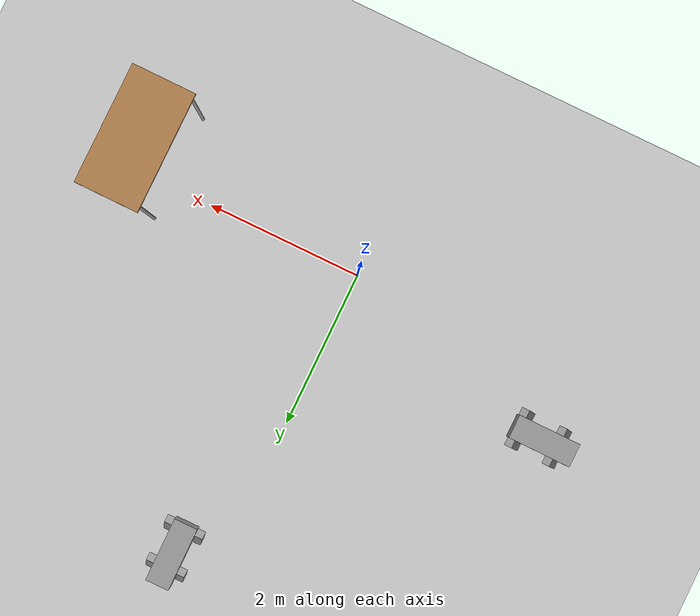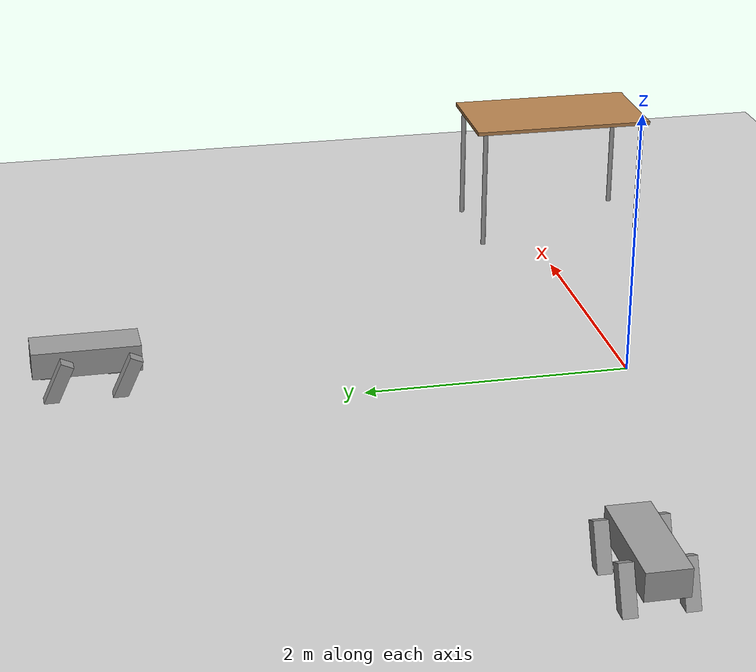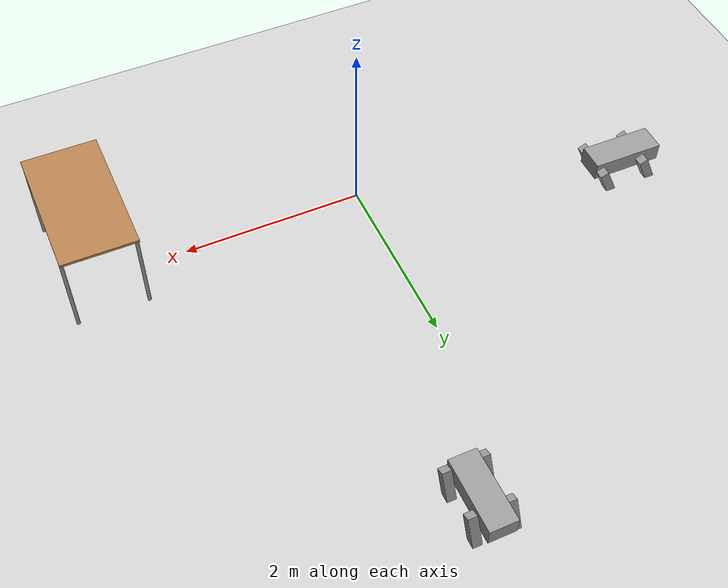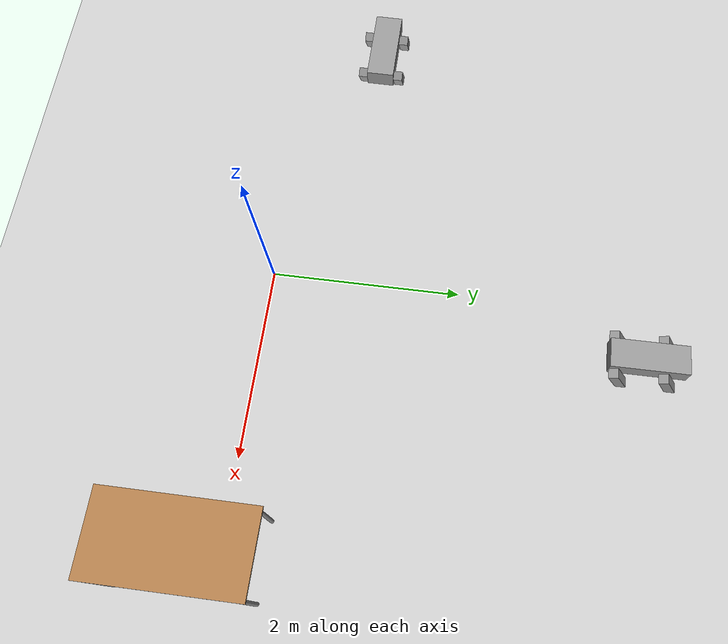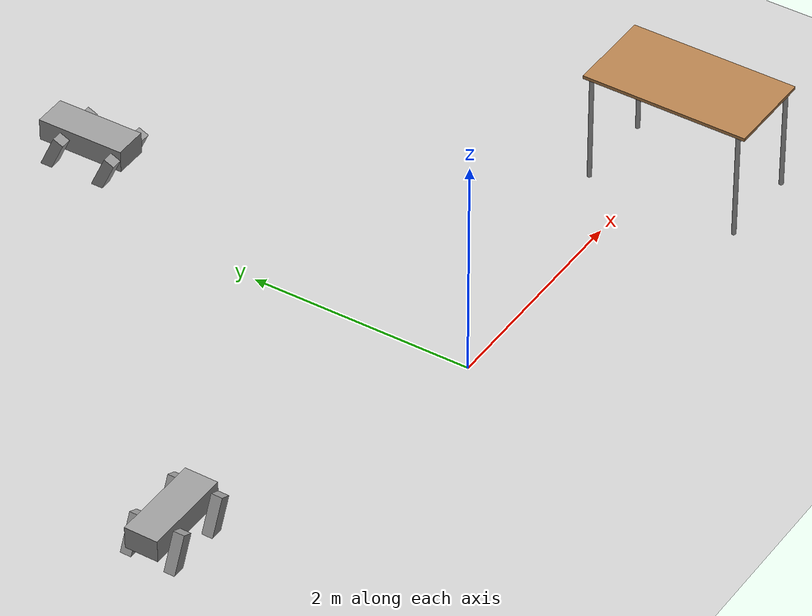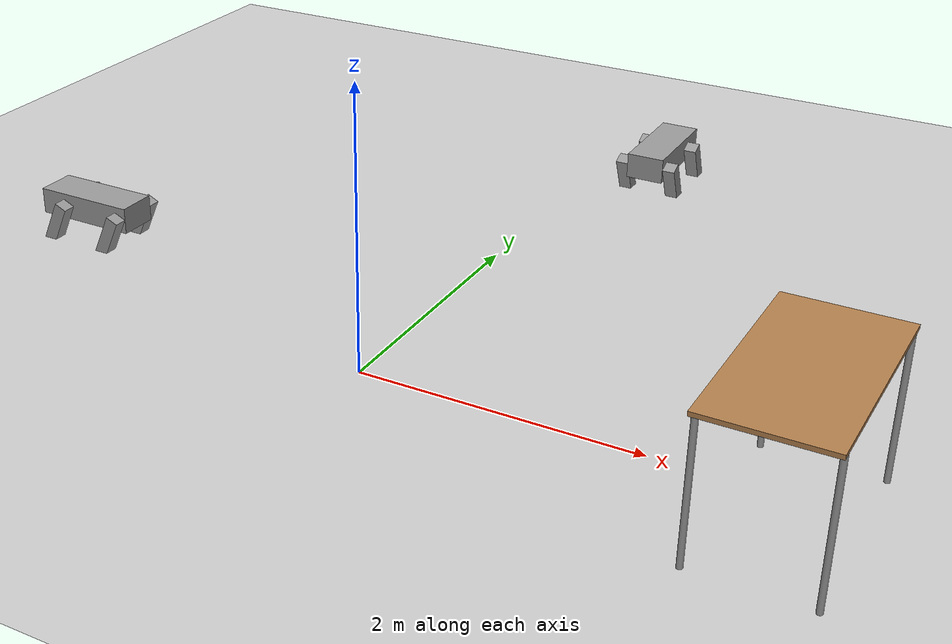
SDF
<sdf version="1.6">
 <world name="default">
  <model name="ground_plane">
   <static>1</static>
   <link name="link">
    <collision name="collision">
     <geometry><plane><normal>0 0 1</normal><size>100 100</size></plane></geometry>
     <surface>
      <contact><collide_bitmask>65535</collide_bitmask></contact>
      <friction><ode><mu>100</mu><mu2>50</mu2></ode></friction>
     </surface>
    </collision>
    <visual name="visual">
     <cast_shadows>0</cast_shadows>
     <geometry><plane><normal>0 0 1</normal><size>100 100</size></plane></geometry>
     <material>
      <script><uri>file://media/materials/scripts/gazebo.material</uri><name>Gazebo/Grey</name></script>
     </material>
    </visual>
   </link>
  </model>
  <model name="Dog">
   <link name="link_3">
    <pose>0 0 0.155724 0 -0 0</pose>
    <inertial>
     <mass>1</mass>
     <inertia>
      <ixx>0.166667</ixx>
      <ixy>0</ixy>
      <ixz>0</ixz>
      <iyy>0.166667</iyy>
      <iyz>0</iyz>
      <izz>0.166667</izz>
     </inertia>
    </inertial>
    <visual name="visual">
     <geometry><box><size>0.3 0.8 0.2</size></box></geometry>
     <material>
      <lighting>1</lighting>
      <script><uri>file://media/materials/scripts/gazebo.material</uri><name>Gazebo/Grey</name></script>
      <shader type="pixel"><normal_map>__default__</normal_map></shader>
      <ambient>0.3 0.3 0.3 1</ambient>
      <diffuse>0.7 0.7 0.7 1</diffuse>
      <specular>0.01 0.01 0.01 1</specular>
      <emissive>0 0 0 1</emissive>
     </material>
    </visual>
    <collision name="collision">
     <geometry><box><size>0.3 0.8 0.2</size></box></geometry>
     <surface>
      <friction>
       <ode><mu>1</mu><mu2>1</mu2><fdir1>0 0 0</fdir1><slip1>0</slip1><slip2>0</slip2></ode>
       <torsional>
        <coefficient>1</coefficient>
        <patch_radius>0</patch_radius>
        <surface_radius>0</surface_radius>
        <use_patch_radius>1</use_patch_radius>
        <ode><slip>0</slip></ode>
       </torsional>
      </friction>
      <bounce><restitution_coefficient>0</restitution_coefficient><threshold>1e+06</threshold></bounce>
      <contact>
       <collide_without_contact>0</collide_without_contact>
       <collide_without_contact_bitmask>1</collide_without_contact_bitmask>
       <collide_bitmask>1</collide_bitmask>
       <ode>
        <soft_cfm>0</soft_cfm>
        <soft_erp>0.2</soft_erp>
        <kp>1e+13</kp>
        <kd>1</kd>
        <max_vel>0.01</max_vel>
        <min_depth>0</min_depth>
       </ode>
       <bullet>
        <split_impulse>1</split_impulse>
        <split_impulse_penetration_threshold>-0.01</split_impulse_penetration_threshold>
        <soft_cfm>0</soft_cfm>
        <soft_erp>0.2</soft_erp>
        <kp>1e+13</kp>
        <kd>1</kd>
       </bullet>
      </contact>
     </surface>
    </collision>
   </link>
   <link name="link_4_clone">
    <pose>-0.2 0.250498 -0.038931 2 -0 0</pose>
    <inertial>
     <mass>1</mass>
     <inertia>
      <ixx>0.166667</ixx>
      <ixy>0</ixy>
      <ixz>0</ixz>
      <iyy>0.166667</iyy>
      <iyz>0</iyz>
      <izz>0.166667</izz>
     </inertia>
    </inertial>
    <visual name="visual">
     <geometry><box><size>0.1 0.5 0.1</size></box></geometry>
     <material>
      <lighting>1</lighting>
      <script><uri>file://media/materials/scripts/gazebo.material</uri><name>Gazebo/Grey</name></script>
      <shader type="pixel"><normal_map>__default__</normal_map></shader>
      <ambient>0.3 0.3 0.3 1</ambient>
      <diffuse>0.7 0.7 0.7 1</diffuse>
      <specular>0.01 0.01 0.01 1</specular>
      <emissive>0 0 0 1</emissive>
     </material>
    </visual>
    <collision name="collision">
     <geometry><box><size>0.1 0.5 0.1</size></box></geometry>
     <surface>
      <friction>
       <ode><mu>1</mu><mu2>1</mu2><fdir1>0 0 0</fdir1><slip1>0</slip1><slip2>0</slip2></ode>
       <torsional>
        <coefficient>1</coefficient>
        <patch_radius>0</patch_radius>
        <surface_radius>0</surface_radius>
        <use_patch_radius>1</use_patch_radius>
        <ode><slip>0</slip></ode>
       </torsional>
      </friction>
      <bounce><restitution_coefficient>0</restitution_coefficient><threshold>1e+06</threshold></bounce>
      <contact>
       <collide_without_contact>0</collide_without_contact>
       <collide_without_contact_bitmask>1</collide_without_contact_bitmask>
       <collide_bitmask>1</collide_bitmask>
       <ode>
        <soft_cfm>0</soft_cfm>
        <soft_erp>0.2</soft_erp>
        <kp>1e+13</kp>
        <kd>1</kd>
        <max_vel>0.01</max_vel>
        <min_depth>0</min_depth>
       </ode>
       <bullet>
        <split_impulse>1</split_impulse>
        <split_impulse_penetration_threshold>-0.01</split_impulse_penetration_threshold>
        <soft_cfm>0</soft_cfm>
        <soft_erp>0.2</soft_erp>
        <kp>1e+13</kp>
        <kd>1</kd>
       </bullet>
      </contact>
     </surface>
    </collision>
   </link>
   <link name="link_4_clone_0">
    <pose>0.2 -0.250498 -0.038931 2 -0 0</pose>
    <inertial>
     <mass>1</mass>
     <inertia>
      <ixx>0.166667</ixx>
      <ixy>0</ixy>
      <ixz>0</ixz>
      <iyy>0.166667</iyy>
      <iyz>0</iyz>
      <izz>0.166667</izz>
     </inertia>
    </inertial>
    <visual name="visual">
     <geometry><box><size>0.1 0.5 0.1</size></box></geometry>
     <material>
      <lighting>1</lighting>
      <script><uri>file://media/materials/scripts/gazebo.material</uri><name>Gazebo/Grey</name></script>
      <shader type="pixel"><normal_map>__default__</normal_map></shader>
      <ambient>0.3 0.3 0.3 1</ambient>
      <diffuse>0.7 0.7 0.7 1</diffuse>
      <specular>0.01 0.01 0.01 1</specular>
      <emissive>0 0 0 1</emissive>
     </material>
    </visual>
    <collision name="collision">
     <geometry><box><size>0.1 0.5 0.1</size></box></geometry>
     <surface>
      <friction>
       <ode><mu>1</mu><mu2>1</mu2><fdir1>0 0 0</fdir1><slip1>0</slip1><slip2>0</slip2></ode>
       <torsional>
        <coefficient>1</coefficient>
        <patch_radius>0</patch_radius>
        <surface_radius>0</surface_radius>
        <use_patch_radius>1</use_patch_radius>
        <ode><slip>0</slip></ode>
       </torsional>
      </friction>
      <bounce><restitution_coefficient>0</restitution_coefficient><threshold>1e+06</threshold></bounce>
      <contact>
       <collide_without_contact>0</collide_without_contact>
       <collide_without_contact_bitmask>1</collide_without_contact_bitmask>
       <collide_bitmask>1</collide_bitmask>
       <ode>
        <soft_cfm>0</soft_cfm>
        <soft_erp>0.2</soft_erp>
        <kp>1e+13</kp>
        <kd>1</kd>
        <max_vel>0.01</max_vel>
        <min_depth>0</min_depth>
       </ode>
       <bullet>
        <split_impulse>1</split_impulse>
        <split_impulse_penetration_threshold>-0.01</split_impulse_penetration_threshold>
        <soft_cfm>0</soft_cfm>
        <soft_erp>0.2</soft_erp>
        <kp>1e+13</kp>
        <kd>1</kd>
       </bullet>
      </contact>
     </surface>
    </collision>
   </link>
   <link name="link_4_clone_1">
    <pose>-0.2 -0.250498 -0.038931 2 -0 0</pose>
    <inertial>
     <mass>1</mass>
     <inertia>
      <ixx>0.166667</ixx>
      <ixy>0</ixy>
      <ixz>0</ixz>
      <iyy>0.166667</iyy>
      <iyz>0</iyz>
      <izz>0.166667</izz>
     </inertia>
    </inertial>
    <visual name="visual">
     <geometry><box><size>0.1 0.5 0.1</size></box></geometry>
     <material>
      <lighting>1</lighting>
      <script><uri>file://media/materials/scripts/gazebo.material</uri><name>Gazebo/Grey</name></script>
      <shader type="pixel"><normal_map>__default__</normal_map></shader>
      <ambient>0.3 0.3 0.3 1</ambient>
      <diffuse>0.7 0.7 0.7 1</diffuse>
      <specular>0.01 0.01 0.01 1</specular>
      <emissive>0 0 0 1</emissive>
     </material>
    </visual>
    <collision name="collision">
     <geometry><box><size>0.1 0.5 0.1</size></box></geometry>
     <surface>
      <friction>
       <ode><mu>1</mu><mu2>1</mu2><fdir1>0 0 0</fdir1><slip1>0</slip1><slip2>0</slip2></ode>
       <torsional>
        <coefficient>1</coefficient>
        <patch_radius>0</patch_radius>
        <surface_radius>0</surface_radius>
        <use_patch_radius>1</use_patch_radius>
        <ode><slip>0</slip></ode>
       </torsional>
      </friction>
      <bounce><restitution_coefficient>0</restitution_coefficient><threshold>1e+06</threshold></bounce>
      <contact>
       <collide_without_contact>0</collide_without_contact>
       <collide_without_contact_bitmask>1</collide_without_contact_bitmask>
       <collide_bitmask>1</collide_bitmask>
       <ode>
        <soft_cfm>0</soft_cfm>
        <soft_erp>0.2</soft_erp>
        <kp>1e+13</kp>
        <kd>1</kd>
        <max_vel>0.01</max_vel>
        <min_depth>0</min_depth>
       </ode>
       <bullet>
        <split_impulse>1</split_impulse>
        <split_impulse_penetration_threshold>-0.01</split_impulse_penetration_threshold>
        <soft_cfm>0</soft_cfm>
        <soft_erp>0.2</soft_erp>
        <kp>1e+13</kp>
        <kd>1</kd>
       </bullet>
      </contact>
     </surface>
    </collision>
   </link>
   <link name="link_4_clone_1_clone">
    <pose>0.2 0.250498 -0.038931 2 -0 0</pose>
    <inertial>
     <mass>1</mass>
     <inertia>
      <ixx>0.166667</ixx>
      <ixy>0</ixy>
      <ixz>0</ixz>
      <iyy>0.166667</iyy>
      <iyz>0</iyz>
      <izz>0.166667</izz>
     </inertia>
    </inertial>
    <visual name="visual">
     <geometry><box><size>0.1 0.5 0.1</size></box></geometry>
     <material>
      <lighting>1</lighting>
      <script><uri>file://media/materials/scripts/gazebo.material</uri><name>Gazebo/Grey</name></script>
      <shader type="pixel"><normal_map>__default__</normal_map></shader>
      <ambient>0.3 0.3 0.3 1</ambient>
      <diffuse>0.7 0.7 0.7 1</diffuse>
      <specular>0.01 0.01 0.01 1</specular>
      <emissive>0 0 0 1</emissive>
     </material>
    </visual>
    <collision name="collision">
     <geometry><box><size>0.1 0.5 0.1</size></box></geometry>
     <surface>
      <friction>
       <ode><mu>1</mu><mu2>1</mu2><fdir1>0 0 0</fdir1><slip1>0</slip1><slip2>0</slip2></ode>
       <torsional>
        <coefficient>1</coefficient>
        <patch_radius>0</patch_radius>
        <surface_radius>0</surface_radius>
        <use_patch_radius>1</use_patch_radius>
        <ode><slip>0</slip></ode>
       </torsional>
      </friction>
      <bounce><restitution_coefficient>0</restitution_coefficient><threshold>1e+06</threshold></bounce>
      <contact>
       <collide_without_contact>0</collide_without_contact>
       <collide_without_contact_bitmask>1</collide_without_contact_bitmask>
       <collide_bitmask>1</collide_bitmask>
       <ode>
        <soft_cfm>0</soft_cfm>
        <soft_erp>0.2</soft_erp>
        <kp>1e+13</kp>
        <kd>1</kd>
        <max_vel>0.01</max_vel>
        <min_depth>0</min_depth>
       </ode>
       <bullet>
        <split_impulse>1</split_impulse>
        <split_impulse_penetration_threshold>-0.01</split_impulse_penetration_threshold>
        <soft_cfm>0</soft_cfm>
        <soft_erp>0.2</soft_erp>
        <kp>1e+13</kp>
        <kd>1</kd>
       </bullet>
      </contact>
     </surface>
    </collision>
   </link>
   <joint name="link_3_JOINT_1" type="revolute">
    <parent>link_3</parent>
    <child>link_4_clone_0</child>
    <axis>
     <xyz>1 0 0</xyz>
     <use_parent_model_frame>0</use_parent_model_frame>
     <limit>
      <lower>-1.79769e+308</lower>
      <upper>1.79769e+308</upper>
      <effort>-1</effort>
      <velocity>-1</velocity>
     </limit>
     <dynamics>
      <spring_reference>0</spring_reference>
      <spring_stiffness>0</spring_stiffness>
      <damping>0</damping>
     </dynamics>
    </axis>
    <physics>
     <ode><limit><cfm>0</cfm><erp>0.2</erp></limit><suspension><cfm>0</cfm><erp>0.2</erp></suspension></ode>
    </physics>
   </joint>
   <joint name="link_3_JOINT_3" type="revolute">
    <parent>link_3</parent>
    <child>link_4_clone_1_clone</child>
    <axis>
     <xyz>1 0 0</xyz>
     <use_parent_model_frame>0</use_parent_model_frame>
     <limit>
      <lower>-1.79769e+308</lower>
      <upper>1.79769e+308</upper>
      <effort>-1</effort>
      <velocity>-1</velocity>
     </limit>
     <dynamics>
      <spring_reference>0</spring_reference>
      <spring_stiffness>0</spring_stiffness>
      <damping>0</damping>
     </dynamics>
    </axis>
    <physics>
     <ode><limit><cfm>0</cfm><erp>0.2</erp></limit><suspension><cfm>0</cfm><erp>0.2</erp></suspension></ode>
    </physics>
   </joint>
   <joint name="link_3_JOINT_4" type="revolute">
    <parent>link_3</parent>
    <child>link_4_clone</child>
    <axis>
     <xyz>1 0 0</xyz>
     <use_parent_model_frame>0</use_parent_model_frame>
     <limit>
      <lower>-1.79769e+308</lower>
      <upper>1.79769e+308</upper>
      <effort>-1</effort>
      <velocity>-1</velocity>
     </limit>
     <dynamics>
      <spring_reference>0</spring_reference>
      <spring_stiffness>0</spring_stiffness>
      <damping>0</damping>
     </dynamics>
    </axis>
    <physics>
     <ode><limit><cfm>0</cfm><erp>0.2</erp></limit><suspension><cfm>0</cfm><erp>0.2</erp></suspension></ode>
    </physics>
   </joint>
   <joint name="link_3_JOINT_5" type="revolute">
    <parent>link_3</parent>
    <child>link_4_clone_1</child>
    <axis>
     <xyz>1 0 0</xyz>
     <use_parent_model_frame>0</use_parent_model_frame>
     <limit>
      <lower>-1.79769e+308</lower>
      <upper>1.79769e+308</upper>
      <effort>-1</effort>
      <velocity>-1</velocity>
     </limit>
     <dynamics>
      <spring_reference>0</spring_reference>
      <spring_stiffness>0</spring_stiffness>
      <damping>0</damping>
     </dynamics>
    </axis>
    <physics>
     <ode><limit><cfm>0</cfm><erp>0.2</erp></limit><suspension><cfm>0</cfm><erp>0.2</erp></suspension></ode>
    </physics>
   </joint>
   <static>0</static>
   <pose>-2.86651 0.833195 0.088927 0 -0 1.56319</pose>
  </model>
  <model name="Dog_0">
   <link name="link_3">
    <pose>0 0 0.155724 0 -0 0</pose>
    <inertial>
     <mass>1</mass>
     <inertia>
      <ixx>0.166667</ixx>
      <ixy>0</ixy>
      <ixz>0</ixz>
      <iyy>0.166667</iyy>
      <iyz>0</iyz>
      <izz>0.166667</izz>
     </inertia>
    </inertial>
    <visual name="visual">
     <geometry><box><size>0.3 0.8 0.2</size></box></geometry>
     <material>
      <lighting>1</lighting>
      <script><uri>file://media/materials/scripts/gazebo.material</uri><name>Gazebo/Grey</name></script>
      <shader type="pixel"><normal_map>__default__</normal_map></shader>
      <ambient>0.3 0.3 0.3 1</ambient>
      <diffuse>0.7 0.7 0.7 1</diffuse>
      <specular>0.01 0.01 0.01 1</specular>
      <emissive>0 0 0 1</emissive>
     </material>
    </visual>
    <collision name="collision">
     <geometry><box><size>0.3 0.8 0.2</size></box></geometry>
     <surface>
      <friction>
       <ode><mu>1</mu><mu2>1</mu2><fdir1>0 0 0</fdir1><slip1>0</slip1><slip2>0</slip2></ode>
       <torsional>
        <coefficient>1</coefficient>
        <patch_radius>0</patch_radius>
        <surface_radius>0</surface_radius>
        <use_patch_radius>1</use_patch_radius>
        <ode><slip>0</slip></ode>
       </torsional>
      </friction>
      <bounce><restitution_coefficient>0</restitution_coefficient><threshold>1e+06</threshold></bounce>
      <contact>
       <collide_without_contact>0</collide_without_contact>
       <collide_without_contact_bitmask>1</collide_without_contact_bitmask>
       <collide_bitmask>1</collide_bitmask>
       <ode>
        <soft_cfm>0</soft_cfm>
        <soft_erp>0.2</soft_erp>
        <kp>1e+13</kp>
        <kd>1</kd>
        <max_vel>0.01</max_vel>
        <min_depth>0</min_depth>
       </ode>
       <bullet>
        <split_impulse>1</split_impulse>
        <split_impulse_penetration_threshold>-0.01</split_impulse_penetration_threshold>
        <soft_cfm>0</soft_cfm>
        <soft_erp>0.2</soft_erp>
        <kp>1e+13</kp>
        <kd>1</kd>
       </bullet>
      </contact>
     </surface>
    </collision>
   </link>
   <link name="link_4_clone">
    <pose>-0.2 0.250498 -0.038931 2 -0 0</pose>
    <inertial>
     <mass>1</mass>
     <inertia>
      <ixx>0.166667</ixx>
      <ixy>0</ixy>
      <ixz>0</ixz>
      <iyy>0.166667</iyy>
      <iyz>0</iyz>
      <izz>0.166667</izz>
     </inertia>
    </inertial>
    <visual name="visual">
     <geometry><box><size>0.1 0.5 0.1</size></box></geometry>
     <material>
      <lighting>1</lighting>
      <script><uri>file://media/materials/scripts/gazebo.material</uri><name>Gazebo/Grey</name></script>
      <shader type="pixel"><normal_map>__default__</normal_map></shader>
      <ambient>0.3 0.3 0.3 1</ambient>
      <diffuse>0.7 0.7 0.7 1</diffuse>
      <specular>0.01 0.01 0.01 1</specular>
      <emissive>0 0 0 1</emissive>
     </material>
    </visual>
    <collision name="collision">
     <geometry><box><size>0.1 0.5 0.1</size></box></geometry>
     <surface>
      <friction>
       <ode><mu>1</mu><mu2>1</mu2><fdir1>0 0 0</fdir1><slip1>0</slip1><slip2>0</slip2></ode>
       <torsional>
        <coefficient>1</coefficient>
        <patch_radius>0</patch_radius>
        <surface_radius>0</surface_radius>
        <use_patch_radius>1</use_patch_radius>
        <ode><slip>0</slip></ode>
       </torsional>
      </friction>
      <bounce><restitution_coefficient>0</restitution_coefficient><threshold>1e+06</threshold></bounce>
      <contact>
       <collide_without_contact>0</collide_without_contact>
       <collide_without_contact_bitmask>1</collide_without_contact_bitmask>
       <collide_bitmask>1</collide_bitmask>
       <ode>
        <soft_cfm>0</soft_cfm>
        <soft_erp>0.2</soft_erp>
        <kp>1e+13</kp>
        <kd>1</kd>
        <max_vel>0.01</max_vel>
        <min_depth>0</min_depth>
       </ode>
       <bullet>
        <split_impulse>1</split_impulse>
        <split_impulse_penetration_threshold>-0.01</split_impulse_penetration_threshold>
        <soft_cfm>0</soft_cfm>
        <soft_erp>0.2</soft_erp>
        <kp>1e+13</kp>
        <kd>1</kd>
       </bullet>
      </contact>
     </surface>
    </collision>
   </link>
   <link name="link_4_clone_0">
    <pose>0.2 -0.250498 -0.038931 2 -0 0</pose>
    <inertial>
     <mass>1</mass>
     <inertia>
      <ixx>0.166667</ixx>
      <ixy>0</ixy>
      <ixz>0</ixz>
      <iyy>0.166667</iyy>
      <iyz>0</iyz>
      <izz>0.166667</izz>
     </inertia>
    </inertial>
    <visual name="visual">
     <geometry><box><size>0.1 0.5 0.1</size></box></geometry>
     <material>
      <lighting>1</lighting>
      <script><uri>file://media/materials/scripts/gazebo.material</uri><name>Gazebo/Grey</name></script>
      <shader type="pixel"><normal_map>__default__</normal_map></shader>
      <ambient>0.3 0.3 0.3 1</ambient>
      <diffuse>0.7 0.7 0.7 1</diffuse>
      <specular>0.01 0.01 0.01 1</specular>
      <emissive>0 0 0 1</emissive>
     </material>
    </visual>
    <collision name="collision">
     <geometry><box><size>0.1 0.5 0.1</size></box></geometry>
     <surface>
      <friction>
       <ode><mu>1</mu><mu2>1</mu2><fdir1>0 0 0</fdir1><slip1>0</slip1><slip2>0</slip2></ode>
       <torsional>
        <coefficient>1</coefficient>
        <patch_radius>0</patch_radius>
        <surface_radius>0</surface_radius>
        <use_patch_radius>1</use_patch_radius>
        <ode><slip>0</slip></ode>
       </torsional>
      </friction>
      <bounce><restitution_coefficient>0</restitution_coefficient><threshold>1e+06</threshold></bounce>
      <contact>
       <collide_without_contact>0</collide_without_contact>
       <collide_without_contact_bitmask>1</collide_without_contact_bitmask>
       <collide_bitmask>1</collide_bitmask>
       <ode>
        <soft_cfm>0</soft_cfm>
        <soft_erp>0.2</soft_erp>
        <kp>1e+13</kp>
        <kd>1</kd>
        <max_vel>0.01</max_vel>
        <min_depth>0</min_depth>
       </ode>
       <bullet>
        <split_impulse>1</split_impulse>
        <split_impulse_penetration_threshold>-0.01</split_impulse_penetration_threshold>
        <soft_cfm>0</soft_cfm>
        <soft_erp>0.2</soft_erp>
        <kp>1e+13</kp>
        <kd>1</kd>
       </bullet>
      </contact>
     </surface>
    </collision>
   </link>
   <link name="link_4_clone_1">
    <pose>-0.2 -0.250498 -0.038931 2 -0 0</pose>
    <inertial>
     <mass>1</mass>
     <inertia>
      <ixx>0.166667</ixx>
      <ixy>0</ixy>
      <ixz>0</ixz>
      <iyy>0.166667</iyy>
      <iyz>0</iyz>
      <izz>0.166667</izz>
     </inertia>
    </inertial>
    <visual name="visual">
     <geometry><box><size>0.1 0.5 0.1</size></box></geometry>
     <material>
      <lighting>1</lighting>
      <script><uri>file://media/materials/scripts/gazebo.material</uri><name>Gazebo/Grey</name></script>
      <shader type="pixel"><normal_map>__default__</normal_map></shader>
      <ambient>0.3 0.3 0.3 1</ambient>
      <diffuse>0.7 0.7 0.7 1</diffuse>
      <specular>0.01 0.01 0.01 1</specular>
      <emissive>0 0 0 1</emissive>
     </material>
    </visual>
    <collision name="collision">
     <geometry><box><size>0.1 0.5 0.1</size></box></geometry>
     <surface>
      <friction>
       <ode><mu>1</mu><mu2>1</mu2><fdir1>0 0 0</fdir1><slip1>0</slip1><slip2>0</slip2></ode>
       <torsional>
        <coefficient>1</coefficient>
        <patch_radius>0</patch_radius>
        <surface_radius>0</surface_radius>
        <use_patch_radius>1</use_patch_radius>
        <ode><slip>0</slip></ode>
       </torsional>
      </friction>
      <bounce><restitution_coefficient>0</restitution_coefficient><threshold>1e+06</threshold></bounce>
      <contact>
       <collide_without_contact>0</collide_without_contact>
       <collide_without_contact_bitmask>1</collide_without_contact_bitmask>
       <collide_bitmask>1</collide_bitmask>
       <ode>
        <soft_cfm>0</soft_cfm>
        <soft_erp>0.2</soft_erp>
        <kp>1e+13</kp>
        <kd>1</kd>
        <max_vel>0.01</max_vel>
        <min_depth>0</min_depth>
       </ode>
       <bullet>
        <split_impulse>1</split_impulse>
        <split_impulse_penetration_threshold>-0.01</split_impulse_penetration_threshold>
        <soft_cfm>0</soft_cfm>
        <soft_erp>0.2</soft_erp>
        <kp>1e+13</kp>
        <kd>1</kd>
       </bullet>
      </contact>
     </surface>
    </collision>
   </link>
   <link name="link_4_clone_1_clone">
    <pose>0.2 0.250498 -0.038931 2 -0 0</pose>
    <inertial>
     <mass>1</mass>
     <inertia>
      <ixx>0.166667</ixx>
      <ixy>0</ixy>
      <ixz>0</ixz>
      <iyy>0.166667</iyy>
      <iyz>0</iyz>
      <izz>0.166667</izz>
     </inertia>
    </inertial>
    <visual name="visual">
     <geometry><box><size>0.1 0.5 0.1</size></box></geometry>
     <material>
      <lighting>1</lighting>
      <script><uri>file://media/materials/scripts/gazebo.material</uri><name>Gazebo/Grey</name></script>
      <shader type="pixel"><normal_map>__default__</normal_map></shader>
      <ambient>0.3 0.3 0.3 1</ambient>
      <diffuse>0.7 0.7 0.7 1</diffuse>
      <specular>0.01 0.01 0.01 1</specular>
      <emissive>0 0 0 1</emissive>
     </material>
    </visual>
    <collision name="collision">
     <geometry><box><size>0.1 0.5 0.1</size></box></geometry>
     <surface>
      <friction>
       <ode><mu>1</mu><mu2>1</mu2><fdir1>0 0 0</fdir1><slip1>0</slip1><slip2>0</slip2></ode>
       <torsional>
        <coefficient>1</coefficient>
        <patch_radius>0</patch_radius>
        <surface_radius>0</surface_radius>
        <use_patch_radius>1</use_patch_radius>
        <ode><slip>0</slip></ode>
       </torsional>
      </friction>
      <bounce><restitution_coefficient>0</restitution_coefficient><threshold>1e+06</threshold></bounce>
      <contact>
       <collide_without_contact>0</collide_without_contact>
       <collide_without_contact_bitmask>1</collide_without_contact_bitmask>
       <collide_bitmask>1</collide_bitmask>
       <ode>
        <soft_cfm>0</soft_cfm>
        <soft_erp>0.2</soft_erp>
        <kp>1e+13</kp>
        <kd>1</kd>
        <max_vel>0.01</max_vel>
        <min_depth>0</min_depth>
       </ode>
       <bullet>
        <split_impulse>1</split_impulse>
        <split_impulse_penetration_threshold>-0.01</split_impulse_penetration_threshold>
        <soft_cfm>0</soft_cfm>
        <soft_erp>0.2</soft_erp>
        <kp>1e+13</kp>
        <kd>1</kd>
       </bullet>
      </contact>
     </surface>
    </collision>
   </link>
   <joint name="link_3_JOINT_1" type="revolute">
    <parent>link_3</parent>
    <child>link_4_clone_0</child>
    <axis>
     <xyz>1 0 0</xyz>
     <use_parent_model_frame>0</use_parent_model_frame>
     <limit>
      <lower>-1.79769e+308</lower>
      <upper>1.79769e+308</upper>
      <effort>-1</effort>
      <velocity>-1</velocity>
     </limit>
     <dynamics>
      <spring_reference>0</spring_reference>
      <spring_stiffness>0</spring_stiffness>
      <damping>0</damping>
     </dynamics>
    </axis>
    <physics>
     <ode><limit><cfm>0</cfm><erp>0.2</erp></limit><suspension><cfm>0</cfm><erp>0.2</erp></suspension></ode>
    </physics>
   </joint>
   <joint name="link_3_JOINT_3" type="revolute">
    <parent>link_3</parent>
    <child>link_4_clone_1_clone</child>
    <axis>
     <xyz>1 0 0</xyz>
     <use_parent_model_frame>0</use_parent_model_frame>
     <limit>
      <lower>-1.79769e+308</lower>
      <upper>1.79769e+308</upper>
      <effort>-1</effort>
      <velocity>-1</velocity>
     </limit>
     <dynamics>
      <spring_reference>0</spring_reference>
      <spring_stiffness>0</spring_stiffness>
      <damping>0</damping>
     </dynamics>
    </axis>
    <physics>
     <ode><limit><cfm>0</cfm><erp>0.2</erp></limit><suspension><cfm>0</cfm><erp>0.2</erp></suspension></ode>
    </physics>
   </joint>
   <joint name="link_3_JOINT_4" type="revolute">
    <parent>link_3</parent>
    <child>link_4_clone</child>
    <axis>
     <xyz>1 0 0</xyz>
     <use_parent_model_frame>0</use_parent_model_frame>
     <limit>
      <lower>-1.79769e+308</lower>
      <upper>1.79769e+308</upper>
      <effort>-1</effort>
      <velocity>-1</velocity>
     </limit>
     <dynamics>
      <spring_reference>0</spring_reference>
      <spring_stiffness>0</spring_stiffness>
      <damping>0</damping>
     </dynamics>
    </axis>
    <physics>
     <ode><limit><cfm>0</cfm><erp>0.2</erp></limit><suspension><cfm>0</cfm><erp>0.2</erp></suspension></ode>
    </physics>
   </joint>
   <joint name="link_3_JOINT_5" type="revolute">
    <parent>link_3</parent>
    <child>link_4_clone_1</child>
    <axis>
     <xyz>1 0 0</xyz>
     <use_parent_model_frame>0</use_parent_model_frame>
     <limit>
      <lower>-1.79769e+308</lower>
      <upper>1.79769e+308</upper>
      <effort>-1</effort>
      <velocity>-1</velocity>
     </limit>
     <dynamics>
      <spring_reference>0</spring_reference>
      <spring_stiffness>0</spring_stiffness>
      <damping>0</damping>
     </dynamics>
    </axis>
    <physics>
     <ode><limit><cfm>0</cfm><erp>0.2</erp></limit><suspension><cfm>0</cfm><erp>0.2</erp></suspension></ode>
    </physics>
   </joint>
   <static>0</static>
   <pose>0.551944 3.97464 0.088927 0 1e-06 0.004172</pose>
  </model>
  <model name="table">
   <static>1</static>
   <link name="link">
    <collision name="surface">
     <pose>0 0 1 0 -0 0</pose>
     <geometry><box><size>1.5 0.8 0.03</size></box></geometry>
     <surface><friction><ode><mu>0.6</mu><mu2>0.6</mu2></ode></friction></surface>
    </collision>
    <visual name="visual1">
     <pose>0 0 1 0 -0 0</pose>
     <geometry><box><size>1.5 0.8 0.03</size></box></geometry>
     <material>
      <script><uri>file://media/materials/scripts/gazebo.material</uri><name>Gazebo/Wood</name></script>
     </material>
    </visual>
    <collision name="front_left_leg">
     <pose>0.68 0.38 0.5 0 -0 0</pose>
     <geometry><cylinder><radius>0.02</radius><length>1</length></cylinder></geometry>
    </collision>
    <visual name="front_left_leg">
     <pose>0.68 0.38 0.5 0 -0 0</pose>
     <geometry><cylinder><radius>0.02</radius><length>1</length></cylinder></geometry>
     <material>
      <script><uri>file://media/materials/scripts/gazebo.material</uri><name>Gazebo/Grey</name></script>
     </material>
    </visual>
    <collision name="front_right_leg">
     <pose>0.68 -0.38 0.5 0 -0 0</pose>
     <geometry><cylinder><radius>0.02</radius><length>1</length></cylinder></geometry>
    </collision>
    <visual name="front_right_leg">
     <pose>0.68 -0.38 0.5 0 -0 0</pose>
     <geometry><cylinder><radius>0.02</radius><length>1</length></cylinder></geometry>
     <material>
      <script><uri>file://media/materials/scripts/gazebo.material</uri><name>Gazebo/Grey</name></script>
     </material>
    </visual>
    <collision name="back_right_leg">
     <pose>-0.68 -0.38 0.5 0 -0 0</pose>
     <geometry><cylinder><radius>0.02</radius><length>1</length></cylinder></geometry>
    </collision>
    <visual name="back_right_leg">
     <pose>-0.68 -0.38 0.5 0 -0 0</pose>
     <geometry><cylinder><radius>0.02</radius><length>1</length></cylinder></geometry>
     <material>
      <script><uri>file://media/materials/scripts/gazebo.material</uri><name>Gazebo/Grey</name></script>
     </material>
    </visual>
    <collision name="back_left_leg">
     <pose>-0.68 0.38 0.5 0 -0 0</pose>
     <geometry><cylinder><radius>0.02</radius><length>1</length></cylinder></geometry>
    </collision>
    <visual name="back_left_leg">
     <pose>-0.68 0.38 0.5 0 -0 0</pose>
     <geometry><cylinder><radius>0.02</radius><length>1</length></cylinder></geometry>
     <material>
      <script><uri>file://media/materials/scripts/gazebo.material</uri><name>Gazebo/Grey</name></script>
     </material>
    </visual>
   </link>
   <pose>2.93398 -0.238149 0 0 0 -1.57558</pose>
  </model>
 </world>
</sdf>
